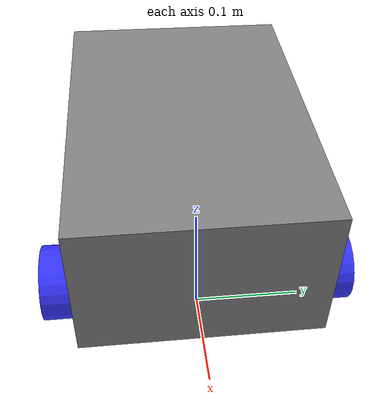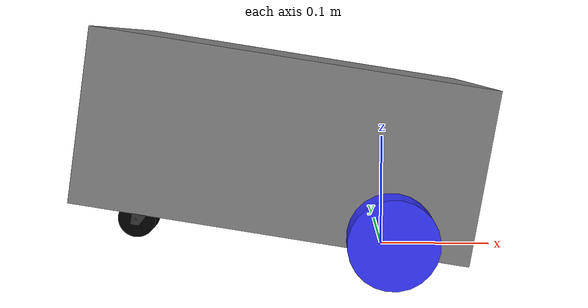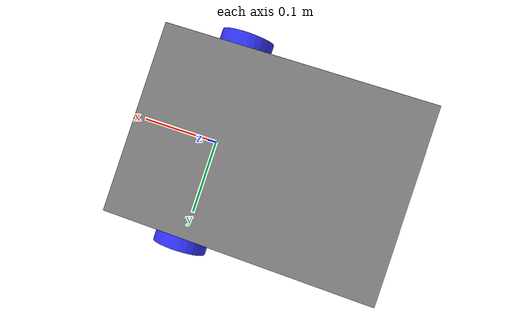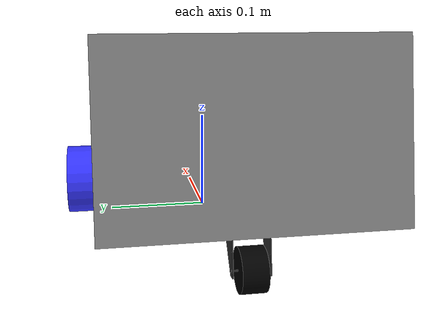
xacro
<?xml version="1.0"?>
<robot xmlns:xacro="http://www.ros.org/wiki/xacro" >

    <xacro:include filename="inertial_macros.xacro"/>

    <material name="white">
        <color rgba="1.0 1.0 1.0 1.0"/>
    </material>

    <material name="orange">
        <color rgba="1.0 0.3 0.1 1.0"/>
    </material>

    <material name="blue">
        <color rgba="0.2 0.2 1.0 1.0"/>
    </material>

    <material name="black">
        <color rgba="0.0 0.0 0.0 1.0"/>
    </material>

    <material name="red">
        <color rgba="1.0 0.0 0.0 1.0"/>
    </material>

    <material name="grey">
        <color rgba="0.5 0.5 0.5 1.0"/>
    </material>

    <!-- BASE LINK-->

    <!-- Using diferential mobile robots its better to use de center of the two wheels as the base link-->
    <!-- Because all the geometry and turns(its going to be the center of rotation) will get easyer to get references from there-->
    <!-- The base_link is usually the chassis or body of a robot that is immediately attached to the ground or world reference frame. -->
    <link name="base_link"></link>

    <!-- BASE_FOOTPRINT LINK necessary for slam_toolbox-->

    <joint name="base_footprint_joint" type="fixed">
        <origin xyz="0.0 0.0 0.0" rpy="0.0 0.0 0.0"/>
        <parent link="base_link"/>
        <child link="base_footprint"/>
    </joint>

    <link name="base_footprint">
    </link>

    <!-- CHASIS LINK -->

    <!-- the origin of the chassis will be just behind the center of rotation-->
    <!-- as the caster wheel is higher, the box is rotated in y -->
    <!-- the mass is created based on the joint, not the link -->
    <joint name="chase_joint" type="fixed">
        <origin xyz="-0.255 0.0 0.06" rpy="0.0 0.15652 0.0"/>
        <parent link="base_link"/>
        <child link="chassis_link"/>
    </joint>

    <link name="chassis_link">
        <visual name="">
            <origin xyz="0.16 0.0 0.07" rpy="0.0 0.0 0.0"/>
            <geometry>
                <box size="0.32 0.225 0.14"/>
            </geometry>
            <material name="grey"/>
        </visual>
        <collision>
            <origin xyz="0.16 0.0 0.07" rpy="0.0 0.0 0.0"/>
            <geometry>
                <box size="0.32 0.225 0.14"/>
            </geometry>
        </collision>
        <xacro:inertial_box mass="0.5" x="0.32" y="0.225" z="0.14">
            <origin xyz="0.165 0.0 0.0" rpy="0.0 0.0 0.0"/>
        </xacro:inertial_box>
    </link>

    <gazebo reference="chassis_link">
        <material>Gazebo/Grey</material>
    </gazebo>

    <!-- LEFT WHEEL LINK -->

    <!-- continuous because it will tourn around continuously-->
    <!-- the z axis must be pointing to the horizontal and out of the robot-->
    <joint name="left_wheel_joint" type="continuous">
        <origin xyz="0.255 0.131 0.015" rpy="-${pi/2} 0.0 0.0"/>
        <parent link="chassis_link"/>
        <child link="left_wheel_link"/>
        <axis xyz="0.0 0.0 1.0"/>
    </joint>

    <link name="left_wheel_link">
        <visual name="">
            <origin xyz="0.0 0.0 0.0" rpy="0.0 0.0 0.0"/>
            <geometry>
                <cylinder radius="0.035" length="0.027"/>
            </geometry>
            <material name="blue" />
        </visual>
        <collision>
            <origin xyz="0.0 0.0 0.0" rpy="0.0 0.0 0.0"/>
            <geometry>
                <cylinder radius="0.035" length="0.027"/>
            </geometry>
        </collision>
        <xacro:inertial_cylinder mass="0.1" length="0.027" radius="0.035">
            <origin xyz="0.0 0.0 0.0" rpy="0.0 0.0 0.0"/>
        </xacro:inertial_cylinder>
    </link>

    <gazebo reference="left_wheel_link">
        <material>Gazebo/Blue</material>
    </gazebo>

    <!-- RIGHT WHEEL LINK -->

    <!-- continuous because it will tourn around continuously-->
    <!-- the z axis must be pointing to the horizontal and out of the robot-->
    <joint name="right_wheel_joint" type="continuous">
        <origin xyz="0.255 -0.131 0.015" rpy="${pi/2} 0.0 0.0"/>
        <parent link="chassis_link"/>
        <child link="right_wheel_link"/>
        <axis xyz="0.0 0.0 -1.0"/>
    </joint>

    <link name="right_wheel_link">
        <visual name="">
            <origin xyz="0.0 0.0 0.0" rpy="0.0 0.0 0.0"/>
            <geometry>
                <cylinder radius="0.035" length="0.027"/>
            </geometry>
            <material name="blue" />
        </visual>
        <collision>
            <origin xyz="0.0 0.0 0.0" rpy="0.0 0.0 0.0"/>
            <geometry>
                <cylinder radius="0.035" length="0.027"/>
            </geometry>
        </collision>
        <xacro:inertial_cylinder mass="0.1" length="0.027" radius="0.035">
            <origin xyz="0.0 0.0 0.0" rpy="0.0 0.0 0.0"/>
        </xacro:inertial_cylinder>
    </link>

    <gazebo reference="right_wheel_link">
        <material>Gazebo/Blue</material>
    </gazebo>

    <!-- CASTER WHEEL LINK -->

    <!-- fixed because of little bit of cheating-->
    <!-- the z axis must be pointing to the horizontal and out of the robot-->
    <joint name="caster_wheel_joint" type="fixed">
        <origin xyz="0.05 0.0 0.0" rpy="0.0 0.0 0.0"/>
        <parent link="chassis_link"/>
        <child link="caster_wheel_link"/>
    </joint>

    <link name="caster_wheel_link">
        <visual name="">
            <origin xyz="0.0 0.0 0.0" rpy="0.0 0.0 0.0"/>
            <geometry>
                <mesh filename="model://my_bot/meshes/caster_wheel/caster_wheel.dae" scale="0.001 0.001 0.001"/>
            </geometry>
        </visual>
        <collision>
            <origin xyz="0.0 0.0 0.0" rpy="0.0 0.0 0.0"/>
            <geometry>
                <mesh filename="model://my_bot/meshes/caster_wheel/caster_wheel.stl" scale="0.001 0.001 0.001"/>
            </geometry>
        </collision>
        <xacro:inertial_cylinder mass="0.1" length="0.018" radius="0.0175">
            <origin xyz="0.0 0.0 0.0" rpy="0.0 0.0 0.0"/>
        </xacro:inertial_cylinder>
    </link>

    <gazebo reference="caster_wheel_link">
        <mu1 value="0.0001"/>
        <mu2 value="0.0001"/>
    </gazebo>

</robot>
